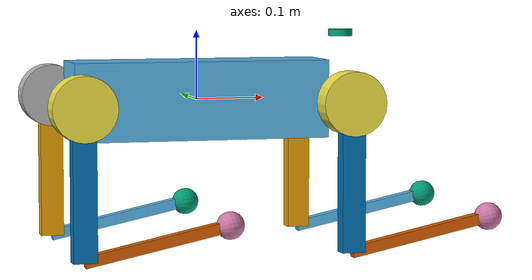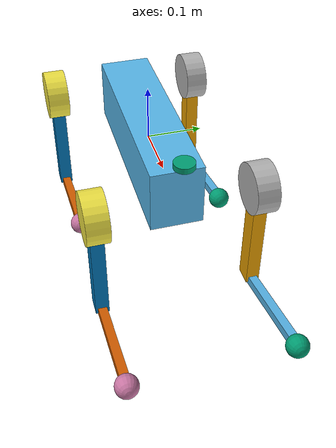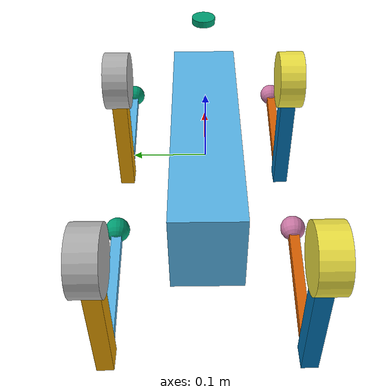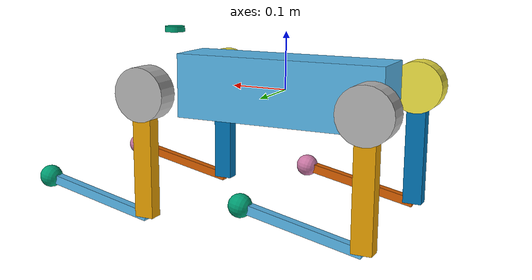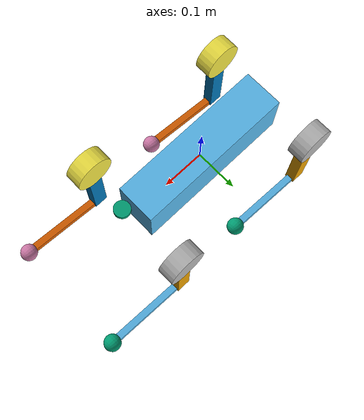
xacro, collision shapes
<?xml version="1.0"?>

<robot name="robot" xmlns:xacro="http://www.ros.org/wiki/xacro">

    <xacro:arg name="DEBUG" default="false"/>

    <xacro:include filename="$(find go2_description)/xacro/const.xacro"/>
    <xacro:include filename="$(find go2_description)/xacro/materials.xacro"/>
    <xacro:include filename="$(find go2_description)/xacro/leg.xacro"/>
    <xacro:include filename="$(find go2_description)/xacro/gazebo_v2.xacro"/>
    <xacro:robot_gazebo_sensors robot_name="$(arg robot_name)"/>

    <!-- Rotor related joint and link is only for demonstrate location. -->
    <!-- Actually, the rotor will rotate and the joint is not fixed. Reduction ratio should be considered. -->

    <!-- Debug mode will hung up the robot, use "true" or "false" to switch it. -->
    <xacro:if value="$(arg DEBUG)">
        <link name="world"/>
        <joint name="base_static_joint" type="fixed">
            <origin rpy="0 0 0" xyz="0 0 0"/>
            <parent link="world"/>
            <child link="base_link"/>
        </joint>
    </xacro:if>

    <link name="base_link">
        <visual>
            <origin rpy="0 0 0" xyz="0 0 0"/>
            <geometry>
                <box size="0.001 0.001 0.001"/>
            </geometry>
        </visual>
    </link>

    <joint name="floating_base" type="fixed">
        <origin rpy="0 0 0" xyz="0 0 0"/>
        <parent link="base_link"/>
        <child link="trunk"/>
    </joint>

    <link name="trunk">
        <visual>
            <origin rpy="0 0 0" xyz="0 0 0"/>
            <geometry>
                <mesh filename="file://$(find go2_description)/meshes/trunk.dae" scale="1 1 1"/>
            </geometry>
        </visual>
        <collision>
            <origin rpy="0 0 0" xyz="0 0 0"/>
            <geometry>
                <box size="${trunk_length} ${trunk_width} ${trunk_height}"/>
            </geometry>
        </collision>
        <inertial>
            <origin rpy="0 0 0" xyz="${trunk_com_x} ${trunk_com_y} ${trunk_com_z}"/>
            <mass value="${trunk_mass}"/>
            <inertia
                ixx="${trunk_ixx}" ixy="${trunk_ixy}" ixz="${trunk_ixz}"
                iyy="${trunk_iyy}" iyz="${trunk_iyz}"
                izz="${trunk_izz}"/>
        </inertial>
    </link>

    <joint name='laser_scan' type='fixed'>
        <parent link="base_link"/>,
        <child link="laser_frame"/>
        <origin xyz="0.22 0.0 0.095" rpy="0 0 0" />
    </joint>

    <link name="laser_frame">
        <inertial>
            <mass value="0.001"/>
            <origin rpy="0 0 0" xyz="0 0 0"/>
            <inertia ixx="0.0001" ixy="0" ixz="0" iyy="0.0001" iyz="0" izz="0.0001"/>
        </inertial>
        <visual>
            <origin rpy="0 0 0" xyz="0 0 0"/>
            <geometry>
                <cylinder length="0.01" radius="0.018" />
            </geometry>
        </visual>
        <collision>
            <origin rpy="0 0 0" xyz="0 0 0"/>
            <geometry>
                <cylinder length="0.01" radius="0.018" />
            </geometry>
        </collision>
    </link>

    <joint name="imu_joint" type="fixed">
        <parent link="base_link"/>
        <child link="imu_link"/>
        <origin rpy="0 0 0" xyz="0 0 0"/>
    </joint>

    <link name="imu_link">
        <inertial>
            <mass value="0.001"/>
            <origin rpy="0 0 0" xyz="0 0 0"/>
            <inertia ixx="0.0001" ixy="0" ixz="0" iyy="0.0001" iyz="0" izz="0.0001"/>
        </inertial>
        <visual>
            <origin rpy="0 0 0" xyz="0 0 0"/>
            <geometry>
                <box size="0.001 0.001 0.001"/>
            </geometry>
        </visual>
        <collision>
            <origin rpy="0 0 0" xyz="0 0 0"/>
            <geometry>
                <box size=".001 .001 .001"/>
            </geometry>
        </collision>
    </link>
    <!-- ================= CAMERA MOUNT ================= -->
    <!-- Camera mount joint (relative to base_link) -->
    <joint name="camera_joint" type="fixed">
    <origin xyz="0.33 0.0 0.04" rpy="0 0 0"/>  <!-- adjust forward & height -->
    <parent link="base_link"/>
    <child link="camera_link"/>
    </joint>
    <link name="camera_link">
    </link>
    <!-- ================= RGB CAMERA ================= -->
    <joint name="camera_rgb_joint" type="fixed">
    <origin xyz="0.005 0 0" rpy="0 0 0"/> <!-- offsets similar to Husky -->
    <parent link="camera_link"/>
    <child link="camera_rgb_frame"/>
    </joint>
    <link name="camera_rgb_frame"/>

    <joint name="camera_rgb_optical_joint" type="fixed">
    <origin xyz="0 0 0" rpy="-1.57 0 -1.57"/>
    <parent link="camera_rgb_frame"/>
    <child link="camera_rgb_optical_frame"/>
    </joint>
    <link name="camera_rgb_optical_frame"/>

    <!-- ================= DEPTH CAMERA ================= -->
    <joint name="camera_depth_joint" type="fixed">
    <origin xyz="0.005 0 0" rpy="0 0 0"/> <!-- offset by depth_offset -->
    <parent link="camera_link"/>
    <child link="camera_depth_frame"/>
    </joint>
    <link name="camera_depth_frame"/>

    <joint name="camera_depth_optical_joint" type="fixed">
    <origin xyz="0 0 0" rpy="-1.57 0 -1.57"/>
    <parent link="camera_depth_frame"/>
    <child link="camera_depth_optical_frame"/>
    </joint>
    <link name="camera_depth_optical_frame"/>

      <!-- ================= THERMAL CAMERA ================= -->
    <joint name="thermal_joint" type="fixed">
    <origin xyz="0.005 0 0" rpy="0 0 0"/> <!-- Adjust position -->
    <parent link="camera_link"/>
    <child link="thermal_link"/>
    </joint>
    <link name="thermal_link"/>

    <joint name="thermal_optical_joint" type="fixed">
    <origin xyz="0 0 0" rpy="-1.57 0 -1.57"/>
    <parent link="thermal_link"/>
    <child link="thermal_optical_frame"/>
    </joint>
    <link name="thermal_optical_frame"/>

    <xacro:leg name="rf" mirror="-1" mirror_dae= "False" front_hind="1"  front_hind_dae="True"  />
    <xacro:leg name="lf" mirror="1"  mirror_dae="True"   front_hind="1"  front_hind_dae="True"  />
    <xacro:leg name="rh" mirror="-1" mirror_dae="False"  front_hind="-1" front_hind_dae="False" />
    <xacro:leg name="lh" mirror="1"  mirror_dae="True"   front_hind="-1" front_hind_dae="False" />

</robot>

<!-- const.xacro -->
<robot xmlns:xacro="http://www.ros.org/wiki/xacro">

    <!-- Constants for robot dimensions -->
    <xacro:property name="PI" value="3.1415926535897931"/>
    <xacro:property name="stick_mass" value="0.00001"/>

    <!-- simplified collision value -->
    <xacro:property name="trunk_width" value="0.0935"/>
    <xacro:property name="trunk_length" value="0.3762"/>
    <xacro:property name="trunk_height" value="0.114"/>
    <xacro:property name="hip_radius" value="0.046"/>
    <xacro:property name="hip_length" value="0.04"/>
    <xacro:property name="thigh_shoulder_radius" value="0.041"/>
    <xacro:property name="thigh_shoulder_length" value="0.032"/>
    <xacro:property name="thigh_width" value="0.0245"/>
    <xacro:property name="thigh_height" value="0.034"/>
    <xacro:property name="calf_width" value="0.016"/>
    <xacro:property name="calf_height" value="0.016"/>
    <xacro:property name="foot_radius" value="0.02"/>
    <xacro:property name="stick_radius" value="0.01"/>
    <xacro:property name="stick_length" value="0.2"/>

    <!-- kinematic value -->
    <xacro:property name="thigh_offset" value="0.0955"/>
    <xacro:property name="thigh_length" value="0.213"/>
    <xacro:property name="calf_length" value="0.213"/>

    <!-- leg offset from trunk center value -->
    <xacro:property name="leg_offset_x" value="0.1934"/>
    <xacro:property name="leg_offset_y" value="0.0465"/>
    <xacro:property name="hip_offset" value="0.0955"/>

    <!-- offset of link locations (left front) -->
    <xacro:property name="hip_offset_x" value="0.1934"/>
    <xacro:property name="hip_offset_y" value="0.0465"/>
    <xacro:property name="hip_offset_z" value="0.0"/>

    <xacro:property name="thigh_offset_x" value="0"/>
    <xacro:property name="thigh_offset_y" value="0.0955"/>
    <xacro:property name="thigh_offset_z" value="0.0"/>

    <xacro:property name="calf_offset_x" value="0.0"/>
    <xacro:property name="calf_offset_y" value="0.0"/>
    <xacro:property name="calf_offset_z" value="-0.213"/>

    <!-- joint limits -->
    <xacro:property name="damping" value="0.0"/>
    <xacro:property name="friction" value="0.0"/>
    <xacro:property name="hip_position_max" value="1.0472"/>
    <xacro:property name="hip_position_min" value="-1.0472"/>
    <xacro:property name="hip_velocity_max" value="30.1"/>
    <xacro:property name="hip_torque_max" value="23.7"/>
    <xacro:property name="thigh_position_max" value="3.4907"/>
    <xacro:property name="thigh_position_min" value="-1.5708"/>
    <xacro:property name="thigh_velocity_max" value="30.1"/>
    <xacro:property name="thigh_torque_max" value="23.7"/>
    <xacro:property name="calf_position_max" value="-0.83776"/>
    <xacro:property name="calf_position_min" value="-2.7227"/>
    <xacro:property name="calf_velocity_max" value="20.06"/>
    <xacro:property name="calf_torque_max" value="35.55"/>

    <!-- dynamics inertial value -->
    <!-- trunk -->
    <xacro:property name="trunk_mass" value="6.921"/>
    <xacro:property name="trunk_com_x" value="0.021112"/>
    <xacro:property name="trunk_com_y" value="0.00"/>
    <xacro:property name="trunk_com_z" value="-0.005366"/>
    <xacro:property name="trunk_ixx" value="0.02448"/>
    <xacro:property name="trunk_ixy" value="0.00012166"/>
    <xacro:property name="trunk_ixz" value="0.0014849"/>
    <xacro:property name="trunk_iyy" value="0.098077"/>
    <xacro:property name="trunk_iyz" value="-3.12E-05"/>
    <xacro:property name="trunk_izz" value="0.107"/>

    <!-- hip (left front) -->
    <xacro:property name="hip_mass" value="0.678"/>
    <xacro:property name="hip_com_x" value="-0.0054"/>
    <xacro:property name="hip_com_y" value="0.00194"/>
    <xacro:property name="hip_com_z" value="-0.000105"/>
    <xacro:property name="hip_ixx" value="0.00048"/>
    <xacro:property name="hip_ixy" value="-3.01E-06"/>
    <xacro:property name="hip_ixz" value="1.11E-06"/>
    <xacro:property name="hip_iyy" value="0.000884"/>
    <xacro:property name="hip_iyz" value="-1.42E-06"/>
    <xacro:property name="hip_izz" value="0.000596"/>

    <!-- thigh -->
    <xacro:property name="thigh_mass" value="1.152"/>
    <xacro:property name="thigh_com_x" value="-0.00374"/>
    <xacro:property name="thigh_com_y" value="-0.0223"/>
    <xacro:property name="thigh_com_z" value="-0.0327"/>
    <xacro:property name="thigh_ixx" value="0.00584"/>
    <xacro:property name="thigh_ixy" value="8.72E-05"/>
    <xacro:property name="thigh_ixz" value="-0.000289"/>
    <xacro:property name="thigh_iyy" value="0.0058"/>
    <xacro:property name="thigh_iyz" value="0.000808"/>
    <xacro:property name="thigh_izz" value="0.00103"/>

    <!-- calf -->
    <xacro:property name="calf_mass" value="0.154"/>
    <xacro:property name="calf_com_x" value="0.00548"/>
    <xacro:property name="calf_com_y" value="-0.000975"/>
    <xacro:property name="calf_com_z" value="-0.115"/>
    <xacro:property name="calf_ixx" value="0.00108"/>
    <xacro:property name="calf_ixy" value="3.4E-07"/>
    <xacro:property name="calf_ixz" value="1.72E-05"/>
    <xacro:property name="calf_iyy" value="0.0011"/>
    <xacro:property name="calf_iyz" value="8.28E-06"/>
    <xacro:property name="calf_izz" value="3.29E-05"/>

    <!-- foot -->
    <xacro:property name="foot_mass" value="0.06"/>

</robot>

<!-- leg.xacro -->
<robot xmlns:xacro="http://www.ros.org/wiki/xacro">

    <xacro:macro name="leg" params="name mirror mirror_dae front_hind front_hind_dae">

        <joint name="${name}_hip_joint" type="revolute">
            <xacro:if value="${(mirror_dae == False) and (front_hind_dae == True)}">
                <origin rpy="0 0 0" xyz="${leg_offset_x} ${-leg_offset_y} 0"/>
            </xacro:if>
            <xacro:if value="${(mirror_dae == True) and (front_hind_dae == True)}">
                <origin rpy="0 0 0" xyz="${leg_offset_x} ${leg_offset_y} 0"/>
            </xacro:if>
            <xacro:if value="${(mirror_dae == False) and (front_hind_dae == False)}">
                <origin rpy="0 0 0" xyz="${-leg_offset_x} ${-leg_offset_y} 0"/>
            </xacro:if>
            <xacro:if value="${(mirror_dae == True) and (front_hind_dae == False)}">
                <origin rpy="0 0 0" xyz="${-leg_offset_x} ${leg_offset_y} 0"/>
            </xacro:if>
            <parent link="trunk"/>
            <child link="${name}_hip_link"/>
            <axis xyz="1 0 0"/>
            <dynamics damping="${damping}" friction="${friction}"/>
            <xacro:if value="${(mirror_dae == True)}">
                <limit effort="${hip_torque_max}" velocity="${hip_velocity_max}" lower="${hip_position_min}" upper="${hip_position_max}"/>
            </xacro:if>
            <xacro:if value="${(mirror_dae == False)}">
                <limit effort="${hip_torque_max}" velocity="${hip_velocity_max}" lower="${-hip_position_max}" upper="${-hip_position_min}"/>
            </xacro:if>
        </joint>

        <link name="${name}_hip_link">
            <visual>
                <xacro:if value="${(mirror_dae == True) and (front_hind_dae == True)}">
                    <origin rpy="0 0 0" xyz="0 0 0"/>
                </xacro:if>
                <xacro:if value="${(mirror_dae == False) and (front_hind_dae == True)}">
                    <origin rpy="${PI} 0 0" xyz="0 0 0"/>
                </xacro:if>
                <xacro:if value="${(mirror_dae == True) and (front_hind_dae == False)}">
                    <origin rpy="0 ${PI} 0" xyz="0 0 0"/>
                </xacro:if>
                <xacro:if value="${(mirror_dae == False) and (front_hind_dae == False)}">
                    <origin rpy="${PI} ${PI} 0" xyz="0 0 0"/>
                </xacro:if>
                <geometry>
                    <mesh filename="file://$(find go2_description)/meshes/hip.dae" scale="1 1 1"/>
                </geometry>
            </visual>
            <collision>
                <origin rpy="${PI/2.0} 0 0" xyz="0 ${hip_offset*mirror} 0"/>
                <geometry>
                    <cylinder length="${hip_length}" radius="${hip_radius}"/>
                </geometry>
            </collision>
            <inertial>
                <origin rpy="0 0 0" xyz="${hip_com_x*front_hind} ${hip_com_y*mirror} ${hip_com_z}"/>
                <mass value="${hip_mass}"/>
                <inertia
                    ixx="${hip_ixx}" ixy="${hip_ixy*mirror*front_hind}" ixz="${hip_ixz*front_hind}"
                    iyy="${hip_iyy}" iyz="${hip_iyz*mirror}"
                    izz="${hip_izz}"/>
            </inertial>
        </link>

        <joint name="${name}_upper_leg_joint" type="revolute">
            <origin rpy="0 0 0" xyz="0 ${thigh_offset*mirror} 0"/>
            <parent link="${name}_hip_link"/>
            <child link="${name}_upper_leg_link"/>
            <axis xyz="0 1 0"/>
            <dynamics damping="${damping}" friction="${friction}"/>
            <limit effort="${thigh_torque_max}" velocity="${thigh_velocity_max}" lower="${thigh_position_min}" upper="${thigh_position_max}"/>
        </joint>

        <link name="${name}_upper_leg_link">
            <visual>
                <origin rpy="0 0 0" xyz="0 0 0"/>
                <geometry>
                    <xacro:if value="${mirror_dae == True}">
                        <mesh filename="file://$(find go2_description)/meshes/thigh.dae" scale="1 1 1"/>
                    </xacro:if>
                    <xacro:if value="${mirror_dae == False}">
                        <mesh filename="file://$(find go2_description)/meshes/thigh_mirror.dae" scale="1 1 1"/>
                    </xacro:if>
                </geometry>
            </visual>
            <collision>
                <origin rpy="0 ${PI/2.0} 0" xyz="0 0 ${-thigh_length/2.0}"/>
                <geometry>
                    <box size="${thigh_length} ${thigh_width} ${thigh_height}"/>
                </geometry>
            </collision>
            <inertial>
                <origin rpy="0 0 0" xyz="${thigh_com_x} ${thigh_com_y*mirror} ${thigh_com_z}"/>
                <mass value="${thigh_mass}"/>
                <inertia
                    ixx="${thigh_ixx}" ixy="${thigh_ixy*mirror}" ixz="${thigh_ixz}"
                    iyy="${thigh_iyy}" iyz="${thigh_iyz*mirror}"
                    izz="${thigh_izz}"/>
            </inertial>
        </link>

        <joint name="${name}_lower_leg_joint" type="revolute">
            <origin rpy="0 0 0" xyz="0 0 ${-thigh_length}"/>
            <parent link="${name}_upper_leg_link"/>
            <child link="${name}_lower_leg_link"/>
            <axis xyz="0 1 0"/>
            <dynamics damping="${damping}" friction="${friction}"/>
            <limit effort="${calf_torque_max}" velocity="${calf_velocity_max}" lower="${calf_position_min}" upper="${calf_position_max}"/>
        </joint>

        <link name="${name}_lower_leg_link">
            <visual>
                <origin rpy="0 0 0" xyz="0 0 0"/>
                <geometry>
                    <mesh filename="file://$(find go2_description)/meshes/calf.dae" scale="1 1 1"/>
                </geometry>
            </visual>
            <collision>
                <origin rpy="0 ${PI/2.0} 0" xyz="0 0 ${-calf_length/2.0}"/>
                <geometry>
                    <box size="${calf_length} ${calf_width} ${calf_height}"/>
                </geometry>
            </collision>
            <inertial>
                <origin rpy="0 0 0" xyz="${calf_com_x} ${calf_com_y} ${calf_com_z}"/>
                <mass value="${calf_mass}"/>
                <inertia
                    ixx="${calf_ixx}" ixy="${calf_ixy}" ixz="${calf_ixz}"
                    iyy="${calf_iyy}" iyz="${calf_iyz}"
                    izz="${calf_izz}"/>
            </inertial>
        </link>

        <joint name="${name}_foot_joint" type="fixed">0
            <origin rpy="0 0 0" xyz="0 0 ${-(calf_length)}"/>
            <parent link="${name}_lower_leg_link"/>
            <child link="${name}_foot_link"/>
        </joint>

        <link name="${name}_foot_link">
            <visual>
                <origin rpy="0 0 0" xyz="0 0 0"/>
                <geometry>
                    <sphere radius="${foot_radius-0.01}"/>
                </geometry>
            </visual>
            <collision>
                <origin rpy="0 0 0" xyz="0 0 0"/>
                <geometry>
                    <sphere radius="${foot_radius}"/>
                </geometry>
            </collision>
            <inertial>
                <mass value="${foot_mass}"/>
                <inertia
                    ixx="${(2*foot_mass)/5.0*(foot_radius*foot_radius)}" ixy="0.0" ixz="0.0"
                    iyy="${(2*foot_mass)/5.0*(foot_radius*foot_radius)}" iyz="0.0"
                    izz="${(2*foot_mass)/5.0*(foot_radius*foot_radius)}"/>
            </inertial>
        </link>

    </xacro:macro>
</robot>
